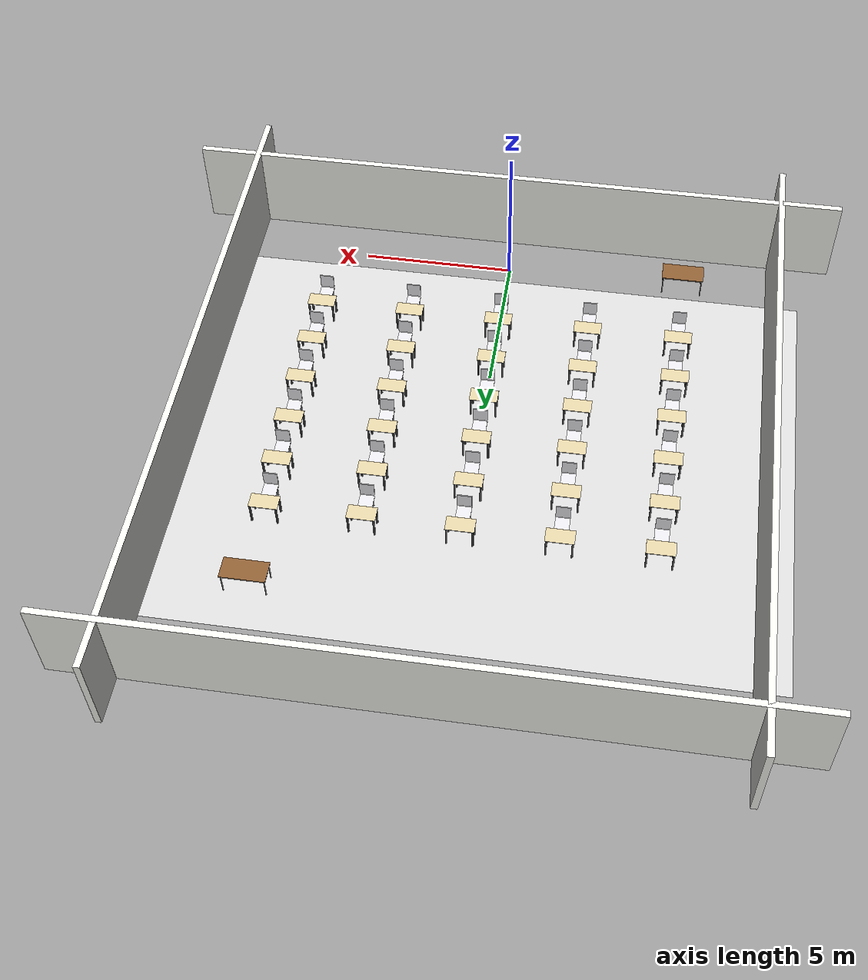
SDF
<?xml version="1.0" ?>
<sdf version="1.10">
  <world name="exam_hall">

    <!-- ==================== PHYSICS & PLUGINS ==================== -->
    <physics name="1ms" type="ignored">
      <max_step_size>0.001</max_step_size>
      <real_time_factor>1</real_time_factor>
      <real_time_update_rate>1000</real_time_update_rate>
    </physics>

    <plugin name="gz::sim::systems::Physics" filename="gz-sim-physics-system"/>
    <plugin name="gz::sim::systems::UserCommands" filename="gz-sim-user-commands-system"/>
    <plugin name="gz::sim::systems::SceneBroadcaster" filename="gz-sim-scene-broadcaster-system"/>
    <plugin name="gz::sim::systems::Sensors" filename="gz-sim-sensors-system">
      <render_engine>ogre2</render_engine>
    </plugin>
    <plugin name="gz::sim::systems::Contact" filename="gz-sim-contact-system"/>

    <!-- ==================== GLOBAL SETTINGS ==================== -->
    <gravity>0 0 -9.81</gravity>
    <scene>
      <ambient>0.3 0.3 0.3 1</ambient>
      <background>0.9 0.9 0.95 1</background>
      <shadows>true</shadows>
    </scene>

    <!-- ==================== FLOOR ==================== -->
    <model name="floor">
      <static>true</static>
      <link name="link">
        <collision name="collision">
          <geometry><plane><normal>0 0 1</normal><size>20 15</size></plane></geometry>
        </collision>
        <visual name="visual">
          <geometry><plane><normal>0 0 1</normal><size>20 15</size></plane></geometry>
          <material><diffuse>0.85 0.85 0.85 1</diffuse></material>
        </visual>
      </link>
      <pose>0 8 0 0 0 0</pose>
    </model>

    <!-- ==================== WALLS ==================== -->
    <include><uri>model://wall_segment</uri><name>wall_north</name><pose>0 17.5 1.5 0 0 0</pose></include>
    <include><uri>model://wall_segment</uri><name>wall_south</name><pose>0 -1.5 1.5 0 0 3.14159</pose></include>
    <include><uri>model://wall_segment</uri><name>wall_east</name><pose>9 8 1.5 0 0 1.5708</pose></include>
    <include><uri>model://wall_segment</uri><name>wall_west</name><pose>-9 8 1.5 0 0 -1.5708</pose></include>

    <!-- ==================== LIGHTS ==================== -->
    <light name="light1" type="directional"><pose>-5 8 2.9 0 0 0</pose><diffuse>1 1 0.95 1</diffuse><intensity>0.8</intensity><direction>0 0 -1</direction></light>
    <light name="light2" type="directional"><pose>5 8 2.9 0 0 0</pose><diffuse>1 1 0.95 1</diffuse><intensity>0.8</intensity><direction>0 0 -1</direction></light>
    <light name="light3" type="directional"><pose>0 4 2.9 0 0 0</pose><diffuse>1 1 0.95 1</diffuse><intensity>0.8</intensity><direction>0 0 -1</direction></light>
    <light name="light4" type="directional"><pose>0 12 2.9 0 0 0</pose><diffuse>1 1 0.95 1</diffuse><intensity>0.8</intensity><direction>0 0 -1</direction></light>

    <!-- ==================== LECTURE DESK ==================== -->
    <include><uri>model://lecture_desk</uri><pose>6 14 0 0 0 0</pose><name>teacher_desk_front</name></include>

    <include><uri>model://lecture_desk</uri><pose>-6 0 0 0 0 0</pose><name>teacher_desk_back</name></include>

    <!-- ==================== EXAM DESKS & CHAIRS (SHIFTED +8 Y) ==================== -->

    <!-- Row 0 -->
    <include><uri>model://exam_desk</uri><pose>-6 3 0 0 0 0</pose><name>desk_0_0</name></include>
    <include><uri>model://exam_chair</uri><pose>-6 2.35 0 0 0 3.14159</pose><name>chair_0_0</name></include>

    <include><uri>model://exam_desk</uri><pose>-3 3 0 0 0 0</pose><name>desk_0_1</name></include>
    <include><uri>model://exam_chair</uri><pose>-3 2.35 0 0 0 3.14159</pose><name>chair_0_1</name></include>

    <include><uri>model://exam_desk</uri><pose>0 3 0 0 0 0</pose><name>desk_0_2</name></include>
    <include><uri>model://exam_chair</uri><pose>0 2.35 0 0 0 3.14159</pose><name>chair_0_2</name></include>

    <include><uri>model://exam_desk</uri><pose>3 3 0 0 0 0</pose><name>desk_0_3</name></include>
    <include><uri>model://exam_chair</uri><pose>3 2.35 0 0 0 3.14159</pose><name>chair_0_3</name></include>

    <include><uri>model://exam_desk</uri><pose>6 3 0 0 0 0</pose><name>desk_0_4</name></include>
    <include><uri>model://exam_chair</uri><pose>6 2.35 0 0 0 3.14159</pose><name>chair_0_4</name></include>

    <!-- Row 1 -->
    <include><uri>model://exam_desk</uri><pose>-6 4.7 0 0 0 0</pose><name>desk_1_0</name></include>
    <include><uri>model://exam_chair</uri><pose>-6 4.05 0 0 0 3.14159</pose><name>chair_1_0</name></include>

    <include><uri>model://exam_desk</uri><pose>-3 4.7 0 0 0 0</pose><name>desk_1_1</name></include>
    <include><uri>model://exam_chair</uri><pose>-3 4.05 0 0 0 3.14159</pose><name>chair_1_1</name></include>

    <include><uri>model://exam_desk</uri><pose>0 4.7 0 0 0 0</pose><name>desk_1_2</name></include>
    <include><uri>model://exam_chair</uri><pose>0 4.05 0 0 0 3.14159</pose><name>chair_1_2</name></include>

    <include><uri>model://exam_desk</uri><pose>3 4.7 0 0 0 0</pose><name>desk_1_3</name></include>
    <include><uri>model://exam_chair</uri><pose>3 4.05 0 0 0 3.14159</pose><name>chair_1_3</name></include>

    <include><uri>model://exam_desk</uri><pose>6 4.7 0 0 0 0</pose><name>desk_1_4</name></include>
    <include><uri>model://exam_chair</uri><pose>6 4.05 0 0 0 3.14159</pose><name>chair_1_4</name></include>

    <!-- Row 2 -->
    <include><uri>model://exam_desk</uri><pose>-6 6.4 0 0 0 0</pose><name>desk_2_0</name></include>
    <include><uri>model://exam_chair</uri><pose>-6 5.75 0 0 0 3.14159</pose><name>chair_2_0</name></include>

    <include><uri>model://exam_desk</uri><pose>-3 6.4 0 0 0 0</pose><name>desk_2_1</name></include>
    <include><uri>model://exam_chair</uri><pose>-3 5.75 0 0 0 3.14159</pose><name>chair_2_1</name></include>

    <include><uri>model://exam_desk</uri><pose>0 6.4 0 0 0 0</pose><name>desk_2_2</name></include>
    <include><uri>model://exam_chair</uri><pose>0 5.75 0 0 0 3.14159</pose><name>chair_2_2</name></include>

    <include><uri>model://exam_desk</uri><pose>3 6.4 0 0 0 0</pose><name>desk_2_3</name></include>
    <include><uri>model://exam_chair</uri><pose>3 5.75 0 0 0 3.14159</pose><name>chair_2_3</name></include>

    <include><uri>model://exam_desk</uri><pose>6 6.4 0 0 0 0</pose><name>desk_2_4</name></include>
    <include><uri>model://exam_chair</uri><pose>6 5.75 0 0 0 3.14159</pose><name>chair_2_4</name></include>

    <!-- Row 3 -->
    <include><uri>model://exam_desk</uri><pose>-6 8.1 0 0 0 0</pose><name>desk_3_0</name></include>
    <include><uri>model://exam_chair</uri><pose>-6 7.45 0 0 0 3.14159</pose><name>chair_3_0</name></include>

    <include><uri>model://exam_desk</uri><pose>-3 8.1 0 0 0 0</pose><name>desk_3_1</name></include>
    <include><uri>model://exam_chair</uri><pose>-3 7.45 0 0 0 3.14159</pose><name>chair_3_1</name></include>

    <include><uri>model://exam_desk</uri><pose>0 8.1 0 0 0 0</pose><name>desk_3_2</name></include>
    <include><uri>model://exam_chair</uri><pose>0 7.45 0 0 0 3.14159</pose><name>chair_3_2</name></include>

    <include><uri>model://exam_desk</uri><pose>3 8.1 0 0 0 0</pose><name>desk_3_3</name></include>
    <include><uri>model://exam_chair</uri><pose>3 7.45 0 0 0 3.14159</pose><name>chair_3_3</name></include>

    <include><uri>model://exam_desk</uri><pose>6 8.1 0 0 0 0</pose><name>desk_3_4</name></include>
    <include><uri>model://exam_chair</uri><pose>6 7.45 0 0 0 3.14159</pose><name>chair_3_4</name></include>

    <!-- Row 4 -->
    <include><uri>model://exam_desk</uri><pose>-6 9.8 0 0 0 0</pose><name>desk_4_0</name></include>
    <include><uri>model://exam_chair</uri><pose>-6 9.15 0 0 0 3.14159</pose><name>chair_4_0</name></include>

    <include><uri>model://exam_desk</uri><pose>-3 9.8 0 0 0 0</pose><name>desk_4_1</name></include>
    <include><uri>model://exam_chair</uri><pose>-3 9.15 0 0 0 3.14159</pose><name>chair_4_1</name></include>

    <include><uri>model://exam_desk</uri><pose>0 9.8 0 0 0 0</pose><name>desk_4_2</name></include>
    <include><uri>model://exam_chair</uri><pose>0 9.15 0 0 0 3.14159</pose><name>chair_4_2</name></include>

    <include><uri>model://exam_desk</uri><pose>3 9.8 0 0 0 0</pose><name>desk_4_3</name></include>
    <include><uri>model://exam_chair</uri><pose>3 9.15 0 0 0 3.14159</pose><name>chair_4_3</name></include>

    <include><uri>model://exam_desk</uri><pose>6 9.8 0 0 0 0</pose><name>desk_4_4</name></include>
    <include><uri>model://exam_chair</uri><pose>6 9.15 0 0 0 3.14159</pose><name>chair_4_4</name></include>

    <!-- Row 5 -->
    <include><uri>model://exam_desk</uri><pose>-6 11.5 0 0 0 0</pose><name>desk_5_0</name></include>
    <include><uri>model://exam_chair</uri><pose>-6 10.85 0 0 0 3.14159</pose><name>chair_5_0</name></include>

    <include><uri>model://exam_desk</uri><pose>-3 11.5 0 0 0 0</pose><name>desk_5_1</name></include>
    <include><uri>model://exam_chair</uri><pose>-3 10.85 0 0 0 3.14159</pose><name>chair_5_1</name></include>

    <include><uri>model://exam_desk</uri><pose>0 11.5 0 0 0 0</pose><name>desk_5_2</name></include>
    <include><uri>model://exam_chair</uri><pose>0 10.85 0 0 0 3.14159</pose><name>chair_5_2</name></include>

    <include><uri>model://exam_desk</uri><pose>3 11.5 0 0 0 0</pose><name>desk_5_3</name></include>
    <include><uri>model://exam_chair</uri><pose>3 10.85 0 0 0 3.14159</pose><name>chair_5_3</name></include>

    <include><uri>model://exam_desk</uri><pose>6 11.5 0 0 0 0</pose><name>desk_5_4</name></include>
    <include><uri>model://exam_chair</uri><pose>6 10.85 0 0 0 3.14159</pose><name>chair_5_4</name></include>

  </world>
</sdf>

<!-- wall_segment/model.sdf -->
<sdf version="1.10">
  <model name="wall_segment">
    <static>true</static>
    <link name="link">
      <collision name="col"><geometry><box><size>20 0.2 3</size></box></geometry></collision>
      <visual name="vis">
        <geometry><box><size>22 0.2 3</size></box></geometry>
        <material><diffuse>0.95 0.95 0.93 1</diffuse></material>
      </visual>
    </link>
  </model>
</sdf>

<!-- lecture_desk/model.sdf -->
<sdf version="1.10">
  <model name="lecture_desk">
    <static>true</static>

    <link name="desk">

      <!-- Inertia -->
      <inertial>
        <mass>15</mass>
        <inertia>
          <ixx>0.3</ixx><iyy>0.3</iyy><izz>0.3</izz>
        </inertia>
      </inertial>

      <!-- TABLETOP -->
      <visual name="top">
        <pose>0 0 0.75 0 0 0</pose>
        <geometry>
          <box><size>1.4 0.7 0.04</size></box>
        </geometry>
        <material>
          <diffuse>0.55 0.37 0.20 1</diffuse> <!-- Wood color -->
          <specular>0.2 0.2 0.2 1</specular>
        </material>
      </visual>

      <collision name="top_col">
        <pose>0 0 0.75 0 0 0</pose>
        <geometry><box><size>1.4 0.7 0.04</size></box></geometry>
      </collision>

      <!-- LEGS -->
      <visual name="leg1"><pose> 0.65  0.3 0.375 0 0 0</pose><geometry><cylinder><radius>0.015</radius><length>0.75</length></cylinder></geometry><material><diffuse>0.2 0.2 0.2 1</diffuse></material></visual>
      <visual name="leg2"><pose>-0.65  0.3 0.375 0 0 0</pose><geometry><cylinder><radius>0.015</radius><length>0.75</length></cylinder></geometry><material><diffuse>0.2 0.2 0.2 1</diffuse></material></visual>
      <visual name="leg3"><pose> 0.65 -0.3 0.375 0 0 0</pose><geometry><cylinder><radius>0.015</radius><length>0.75</length></cylinder></geometry><material><diffuse>0.2 0.2 0.2 1</diffuse></material></visual>
      <visual name="leg4"><pose>-0.65 -0.3 0.375 0 0 0</pose><geometry><cylinder><radius>0.015</radius><length>0.75</length></cylinder></geometry><material><diffuse>0.2 0.2 0.2 1</diffuse></material></visual>

      <collision name="leg1_col"><pose> 0.65  0.3 0.375 0 0 0</pose><geometry><cylinder><radius>0.015</radius><length>0.75</length></cylinder></geometry></collision>
      <collision name="leg2_col"><pose>-0.65  0.3 0.375 0 0 0</pose><geometry><cylinder><radius>0.015</radius><length>0.75</length></cylinder></geometry></collision>
      <collision name="leg3_col"><pose> 0.65 -0.3 0.375 0 0 0</pose><geometry><cylinder><radius>0.015</radius><length>0.75</length></cylinder></geometry></collision>
      <collision name="leg4_col"><pose>-0.65 -0.3 0.375 0 0 0</pose><geometry><cylinder><radius>0.015</radius><length>0.75</length></cylinder></geometry></collision>

    </link>
  </model>
</sdf>

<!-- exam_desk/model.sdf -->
<sdf version="1.10">
  <model name="exam_desk">
    <static>true</static>
    <link name="desk">
      <inertial>
        <mass>5</mass>
        <inertia>
          <ixx>0.5</ixx>
          <iyy>0.5</iyy>
          <izz>0.5</izz>
        </inertia>
      </inertial>

      <!-- Collision: tabletop -->
      <collision name="col_top">
        <geometry>
          <box>
            <size>0.9 0.5 0.02</size>
          </box>
        </geometry>
        <pose>0 0 0.74 0 0 0</pose>
      </collision>

      <!-- Collision: thicker legs (0.05m x 0.05m x 0.74m) -->
      <collision name="col_leg1">
        <geometry>
          <box><size>0.05 0.05 0.74</size></box>
        </geometry>
        <pose>0.40 0.22 0.37 0 0 0</pose>
      </collision>
      <collision name="col_leg2">
        <geometry>
          <box><size>0.05 0.05 0.74</size></box>
        </geometry>
        <pose>-0.40 0.22 0.37 0 0 0</pose>
      </collision>
      <collision name="col_leg3">
        <geometry>
          <box><size>0.05 0.05 0.74</size></box>
        </geometry>
        <pose>0.40 -0.22 0.37 0 0 0</pose>
      </collision>
      <collision name="col_leg4">
        <geometry>
          <box><size>0.05 0.05 0.74</size></box>
        </geometry>
        <pose>-0.40 -0.22 0.37 0 0 0</pose>
      </collision>

      <!-- Visual: tabletop -->
      <visual name="visual_top">
        <geometry>
          <box><size>0.9 0.5 0.02</size></box>
        </geometry>
        <pose>0 0 0.74 0 0 0</pose>
        <material>
          <diffuse>0.88 0.82 0.65 1</diffuse>
        </material>
      </visual>

      <!-- Visual: thicker legs -->
      <visual name="visual_leg1">
        <geometry><box><size>0.05 0.05 0.74</size></box></geometry>
        <pose>0.40 0.22 0.37 0 0 0</pose>
        <material><diffuse>0.3 0.3 0.3 1</diffuse></material>
      </visual>
      <visual name="visual_leg2">
        <geometry><box><size>0.05 0.05 0.74</size></box></geometry>
        <pose>-0.40 0.22 0.37 0 0 0</pose>
        <material><diffuse>0.3 0.3 0.3 1</diffuse></material>
      </visual>
      <visual name="visual_leg3">
        <geometry><box><size>0.05 0.05 0.74</size></box></geometry>
        <pose>0.40 -0.22 0.37 0 0 0</pose>
        <material><diffuse>0.3 0.3 0.3 1</diffuse></material>
      </visual>
      <visual name="visual_leg4">
        <geometry><box><size>0.05 0.05 0.74</size></box></geometry>
        <pose>-0.40 -0.22 0.37 0 0 0</pose>
        <material><diffuse>0.3 0.3 0.3 1</diffuse></material>
      </visual>

    </link>
  </model>
</sdf>

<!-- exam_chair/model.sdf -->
<sdf version="1.10">
  <model name="exam_chair">
    <static>true</static>

    <link name="chair">

      <!-- Inertia -->
      <inertial>
        <mass>3</mass>
        <inertia>
          <ixx>0.1</ixx><iyy>0.1</iyy><izz>0.1</izz>
        </inertia>
      </inertial>

      <!-- SEAT -->
      <visual name="seat">
        <pose>0 0 0.45 0 0 0</pose>
        <geometry>
          <box><size>0.45 0.45 0.04</size></box>
        </geometry>
        <material>
          <diffuse>0.9 0.9 0.92 1</diffuse>
          <specular>0.3 0.3 0.35 1</specular>
        </material>
      </visual>

      <collision name="seat_col">
        <pose>0 0 0.45 0 0 0</pose>
        <geometry><box><size>0.45 0.45 0.04</size></box></geometry>
      </collision>

      <!-- BACKREST -->

      <visual name="back">
        <pose>0 0.215 0.78 0 0 0</pose>
        <geometry>
          <box><size>0.45 0.03 0.50</size></box>
        </geometry>
        <material>
          <diffuse>0.9 0.9 0.92 1</diffuse>
          <specular>0.3 0.3 0.35 1</specular>
        </material>
      </visual>

      <collision name="back_col">
        <pose>0 0.215 0.78 0 0 0</pose>
        <geometry>
          <box><size>0.45 0.03 0.50</size></box>
        </geometry>
      </collision>

      <!-- LEGS -->
      <visual name="leg1"><pose>-0.17 -0.17 0.225 0 0 0</pose><geometry><cylinder><radius>0.025</radius><length>0.45</length></cylinder></geometry><material><diffuse>0.85 0.85 0.88 1</diffuse></material></visual>
      <visual name="leg2"><pose> 0.17 -0.17 0.225 0 0 0</pose><geometry><cylinder><radius>0.025</radius><length>0.45</length></cylinder></geometry><material><diffuse>0.85 0.85 0.88 1</diffuse></material></visual>
      <visual name="leg3"><pose>-0.17  0.17 0.225 0 0 0</pose><geometry><cylinder><radius>0.025</radius><length>0.45</length></cylinder></geometry><material><diffuse>0.85 0.85 0.88 1</diffuse></material></visual>
      <visual name="leg4"><pose> 0.17  0.17 0.225 0 0 0</pose><geometry><cylinder><radius>0.025</radius><length>0.45</length></cylinder></geometry><material><diffuse>0.85 0.85 0.88 1</diffuse></material></visual>

      <collision name="leg1_col"><pose>-0.17 -0.17 0.225 0 0 0</pose><geometry><cylinder><radius>0.025</radius><length>0.45</length></cylinder></geometry></collision>
      <collision name="leg2_col"><pose> 0.17 -0.17 0.225 0 0 0</pose><geometry><cylinder><radius>0.025</radius><length>0.45</length></cylinder></geometry></collision>
      <collision name="leg3_col"><pose>-0.17  0.17 0.225 0 0 0</pose><geometry><cylinder><radius>0.025</radius><length>0.45</length></cylinder></geometry></collision>
      <collision name="leg4_col"><pose> 0.17  0.17 0.225 0 0 0</pose><geometry><cylinder><radius>0.025</radius><length>0.45</length></cylinder></geometry></collision>

    </link>
  </model>
</sdf>
